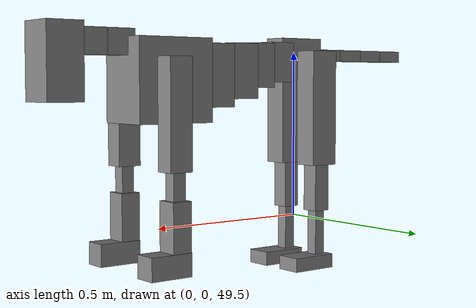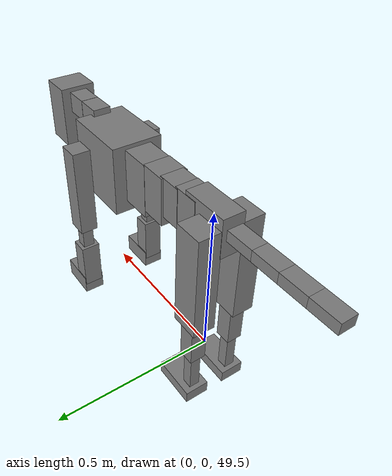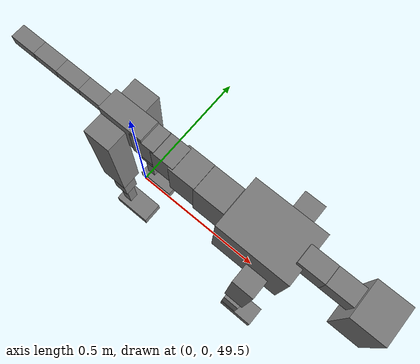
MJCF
<mujoco model="dog">

    <default>
        <joint armature="0.02" stiffness="1" damping="0.2" limited="true"/>
        <geom condim="3" friction="1 0.05 0.05" margin="0.01"/>
        <motor ctrllimited="true" ctrlrange="-1.0 1.0" forcelimited="true" gear="50"/>
    </default>

    <compiler inertiafromgeom="true" angle="radian"/>

    <option timestep="0.016" iterations="50" tolerance="1e-10" solver="Newton" jacobian="dense" cone="pyramidal"/>

    <size nconmax="20000" njmax="60000" nstack="5000000"/>
    <visual>
        <map force="0.1" zfar="30"/>
        <rgba haze="0.15 0.25 0.35 1"/>
        <quality shadowsize="2048"/>
        <global offwidth="800" offheight="800"/>
    </visual>

    <asset>
        <texture type="skybox" builtin="gradient" rgb1="0.3 0.5 0.7" rgb2="0 0 0" width="512" height="512"/>
        <texture name="texplane" type="2d" builtin="checker" rgb1=".2 .3 .4" rgb2=".1 0.15 0.2" width="512" height="512"
                 mark="cross" markrgb=".8 .8 .8"/>
        <texture name="texgeom" type="cube" builtin="flat" mark="cross" width="127" height="1278" rgb1="0.8 0.6 0.4"
                 rgb2="0.8 0.6 0.4" markrgb="1 1 1" random="0.01"/>

        <material name="matplane" reflectance="0.3" texture="texplane" texrepeat="1 1" texuniform="true"/>
        <material name="matgeom" texture="texgeom" texuniform="true" rgba="0.8 0.6 .4 1"/>
    </asset>

    <worldbody>
        <geom name="floor" pos="0 0 0" size="0 0 .25" type="plane" material="matplane" condim="3"/>

        <light directional="false" diffuse=".2 .2 .2" specular="0 0 0" pos="0 0 5" dir="0 0 -1" castshadow="false"/>
        <light mode="targetbodycom" target="torso" directional="false" diffuse=".8 .8 .8" specular="0.3 0.3 0.3"
               pos="0 0 4.0" dir="0 0 -1"/>

        <body name="root" pos="0 0 50">
            <freejoint name="root_1"/>
            <geom type="box" pos="0 0 -0.02" size="0.0774  0.0358  0.063" density="2030"/>

            <body name="spine1" pos="0.054 0 0">
                <joint name="spine1_y" axis="0 1 0" range="0 0.7" limited="true"/>
                <geom type="box" pos="0.02375 0 -0.03" size="0.04375  0.0375  0.05985" density="2030"/>

                <body name="spine2" pos="0.0612 0 0">
                    <joint name="spine2_y" axis="0 1 0" range="-0.15 0.15" limited="true"/>
                    <geom type="box" pos="0.03555  0  -0.04" size="0.04055  0.039  0.06615" density="2030"/>

                    <body name="spine3" pos="0.0730 0 0">
                        <joint name="spine3_y" axis="0 1 0" range="-0.15 0.15" limited="true"/>
                        <geom type="box" pos="0.03555  0  -0.057" size="0.04555  0.0445  0.081" density="2030"/>

                        <body name="spine4" pos="0.0780 0 0">
                            <joint name="spine4_y" axis="0 1 0" range="-0.15 0.15" limited="true"/>
                            <geom type="box" pos="0.05265  0  -0.07" size="0.05265  0.045  0.09135" density="2030"/>

                            <body name="torso" pos="0.1082 0 0">
                                <joint name="torso_y" axis="0 1 0" range="-0.15 0.15" limited="true"/>
                                <geom type="box" pos="0.11925  0  -0.085" size="0.11925  0.085  0.11745"
                                      density="2030"/>

                                <body name="neck1" pos="0.2160  0   0.0180">
                                    <joint name="neck1_y" axis="0 1 0" range="-1.2  -1" limited="true"/>
                                    <geom type="box" pos="0.0423  0  0" size="0.0423  0.03  0.036" density="2325"/>

                                    <body name="neck2" pos="0.0853  0  0">
                                        <joint name="neck2_y" axis="0 1 0" range="0.1  0" limited="true"/>
                                        <geom type="box" pos="0.0423  0  0" size="0.0423  0.03  0.036" density="2325"/>

                                        <body name="head" pos="0.0853  0  0">
                                            <joint name="head_y" axis="0 1 0" range="-0.3  -0.2" limited="true"/>
                                            <geom type="box" pos="0.0531  0  -0.055" size="0.0531  0.06  0.1044"
                                                  density="4030"/>

                                        </body>
                                    </body>
                                </body>

                                <body name="front_shoulder" pos="0.156  0   -0.0480">
                                    <joint name="front_shoulder_y" axis="0 1 0" range="-1 1.5" limited="true"/>
                                    <geom type="box" pos="0 0.13 -0.1269" size="0.0350  0.0299  0.1536" density="1158"/>
                                    <geom type="box" pos="0 -0.13 -0.1269" size="0.0350  0.0299  0.1536"
                                          density="1158"/>

                                    <body name="front_elbow" pos="0  0  -0.2538">
                                        <joint name="front_elbow_y" axis="0 1 0" range="-2 0" limited="true"/>
                                        <geom type="box" pos="0 0.13 -0.0582" size="0.0189  0.0193  0.0582"
                                              density="1081"/>
                                        <geom type="box" pos="0 -0.13 -0.0582" size="0.0189  0.0193  0.0582"
                                              density="1081"/>

                                        <body name="front_wrist" pos="0  0  -0.1164">
                                            <joint name="front_wrist_y" axis="0 1 0" range="-0.2 0" limited="true"/>
                                            <geom type="box" pos="0 0.13 -0.0698" size="0.0293  0.0325  0.0829"
                                                  density="1664"/>
                                            <geom type="box" pos="0 -0.13 -0.0698" size="0.0293  0.0325  0.0829"
                                                  density="1664"/>

                                            <body name="front_finger_end" pos="0  0  -0.1396">
                                                <joint name="front_finger_y" axis="0 1 0" range="-0.4 1"
                                                       limited="true"/>
                                                <geom type="box" pos="0.0347  0.13  -0.0173"
                                                      size="0.0636  0.0347  0.0323" density="1515"/>
                                                <geom type="box" pos="0.0347  -0.13  -0.0173"
                                                      size="0.0636  0.0347  0.0323" density="1515"/>

                                            </body>

                                        </body>
                                    </body>
                                </body>

                            </body>
                        </body>
                    </body>
                </body>
            </body>

            <body name="back_hip" pos="-0.03 0 -0.018">
                <joint name="back_hip_y" axis="0 1 0" range="-1.5 0.3" limited="true"/>
                <geom type="box" pos="0 0.07 -0.1498" size="0.0462  0.0362  0.1726" density="1154"/>
                <geom type="box" pos="0 -0.07 -0.1498" size="0.0462  0.0362  0.1726" density="1154"/>

                <body name="back_knee" pos="0  0  -0.2997">
                    <joint name="back_knee_y" axis="0 1 0" range="0 2.8" limited="true"/>
                    <geom type="box" pos="0 0.07 -0.0737" size="0.0263  0.0259  0.0892" density="1227"/>
                    <geom type="box" pos="0 -0.07 -0.0737" size="0.0263  0.0259  0.0892" density="1227"/>

                    <body name="back_ankle" pos="0  0  -0.1474">
                        <joint name="back_ankle_y" axis="0 1 0" range="-2.2 0" limited="true"/>
                        <geom type="box" pos="0 0.07 -0.0824" size="0.0172  0.0172  0.0937" density="1284"/>
                        <geom type="box" pos="0 -0.07 -0.0824" size="0.0172  0.0172  0.0937" density="1284"/>

                        <body name="back_toe_end" pos="0  0  -0.1648">
                            <joint name="back_toe_y" axis="0 1 0" range="-0.4 1" limited="true"/>
                            <geom type="box" pos="0.0397  0.07  -0.0056" size="0.0727  0.0397  0.0206" density="1515"/>
                            <geom type="box" pos="0.0397  -0.07  -0.0056" size="0.0727  0.0397  0.0206" density="1515"/>

                        </body>
                    </body>
                </body>
            </body>

            <body name="tail1" pos="-0.074 0 -0.006">
                <joint name="tail1_y" axis="0 1 0" range="-0.2 0.2" limited="true"/>
                <geom type="box" pos="-0.0536  0  0" size="0.045  0.025  0.0175" density="1587"/>

                <body name="tail2" pos="-0.09 0 0">
                    <joint name="tail2_y" axis="0 1 0" range="-0.2 0.2" limited="true"/>
                    <geom type="box" pos="-0.0536  0  0" size="0.045  0.025  0.0175" density="1587"/>

                    <body name="tail3" pos="-0.09 0 0">
                        <joint name="tail3_y" axis="0 1 0" range="-0.2 0.2" limited="true"/>
                        <geom type="box" pos="-0.0536  0  0" size="0.045  0.025  0.0175" density="1587"/>

                        <body name="tail4" pos="-0.09 0 0">
                            <joint name="tail4_y" axis="0 1 0" range="-0.2 0.2" limited="true"/>
                            <geom type="box" pos="-0.0536  0  0" size="0.045  0.025  0.0175" density="1587"/>

                        </body>
                    </body>
                </body>
            </body>
        </body>
    </worldbody>

    <actuator>
        <motor joint="spine1_y" forcerange="-150 150     "/>
        <motor joint="spine2_y" forcerange="-150 150     "/>
        <motor joint="spine3_y" forcerange="-150 150     "/>
        <motor joint="spine4_y" forcerange="-150 150     "/>
        <motor joint="torso_y" forcerange="-150 150     "/>
        <motor joint="neck1_y" forcerange="-100 100       "/>
        <motor joint="neck2_y" forcerange="-100 100       "/>
        <motor joint="head_y" forcerange="-150 150       "/>
        <motor joint="front_shoulder_y" forcerange="-153.12 146.27"/>
        <motor joint="front_elbow_y" forcerange="-120.00 120.22"/>
        <motor joint="front_wrist_y" forcerange="-127.20 132.93"/>
        <motor joint="front_finger_y" forcerange="-56.41 88.62"/>
        <motor joint="back_hip_y" forcerange="-339.36 343.88"/>
        <motor joint="back_knee_y" forcerange="-296.10 280.92"/>
        <motor joint="back_angle_y" forcerange="-72.89 102.16"/>
        <motor joint="back_toe_y" forcerange="-138.75 98.62"/>
        <motor joint="tail1_y" forcerange="-50 50     "/>
        <motor joint="tail2_y" forcerange="-50 50     "/>
        <motor joint="tail3_y" forcerange="-50 50     "/>
        <motor joint="tail4_y" forcerange="-50 50     "/>
    </actuator>
</mujoco>
